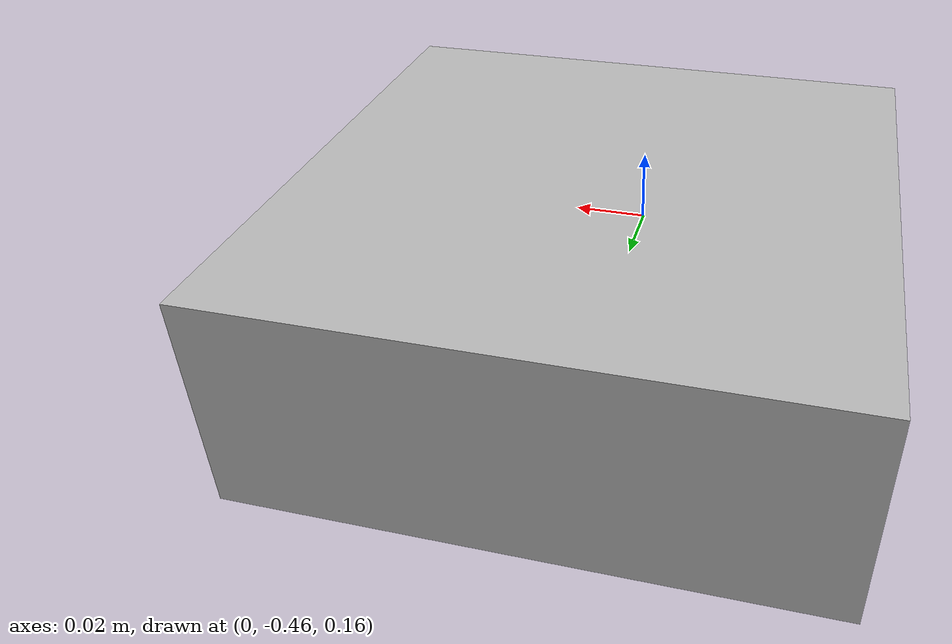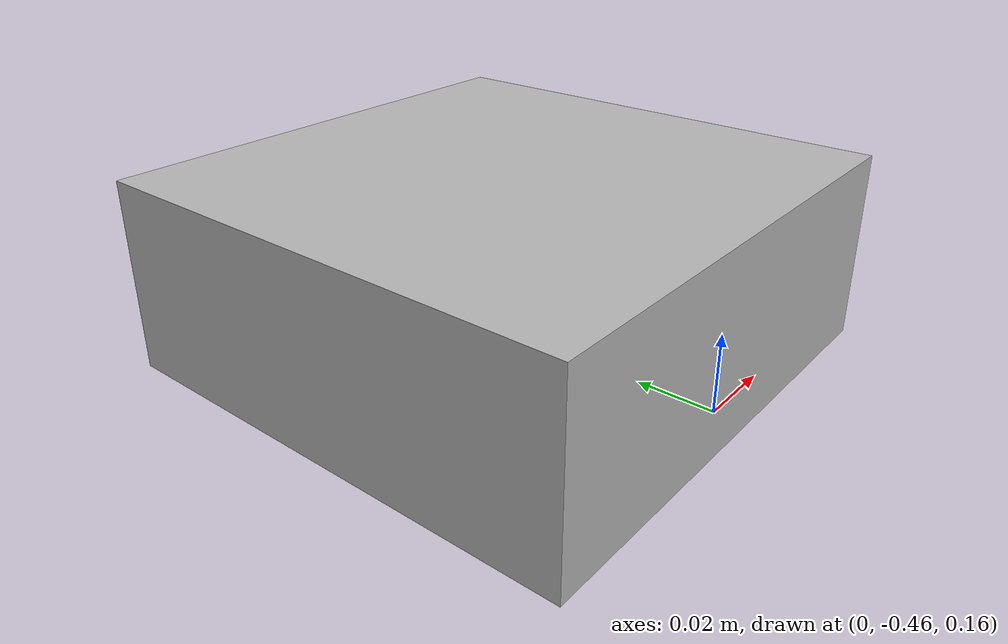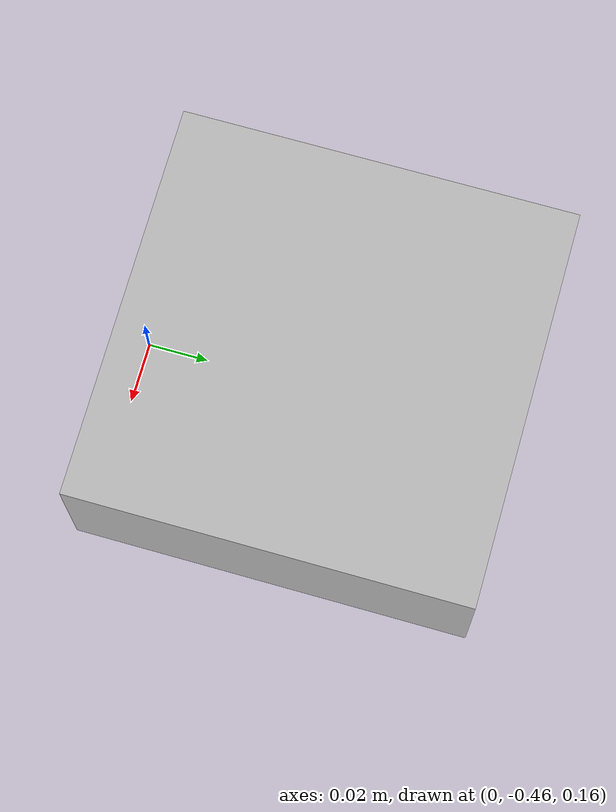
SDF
<?xml version="1.0" ?>
<sdf version="1.4">
  <world name="default">
    <include>
      <uri>model://sun</uri>
    </include>
    <include>
      <uri>model://obj_01</uri>
      <pose>0 -0.4 0.18 0 0 0</pose>
    </include>
    <gravity>0 0 0</gravity>
 </world>
</sdf>

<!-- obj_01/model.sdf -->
<sdf version="1.4">
  <model name="obj_01">
    <pose>0 0 0 0 0 0</pose>
    <static>true</static>
    <link name="link">
      <visual name="pattern">
        <pose> 0 0 0 0 0 0 </pose>
        <geometry>
          <box>
            <size>0.13 0.13 0.05</size>
          </box>
        </geometry>
        <material>
          <script>
            <name>obj/obj_01</name>
          </script>
        </material>
      </visual>
    </link>
  </model>
</sdf>
